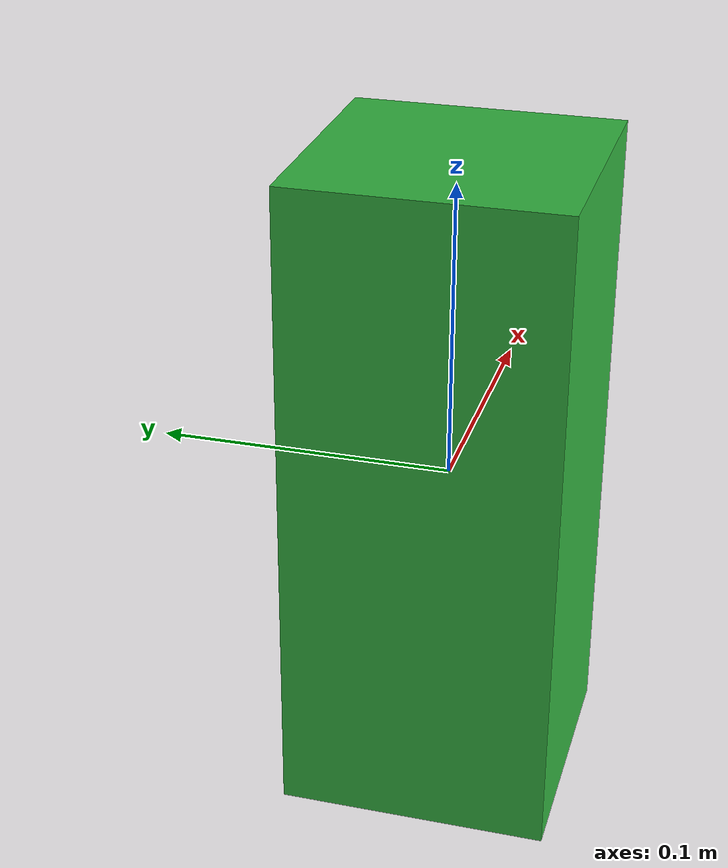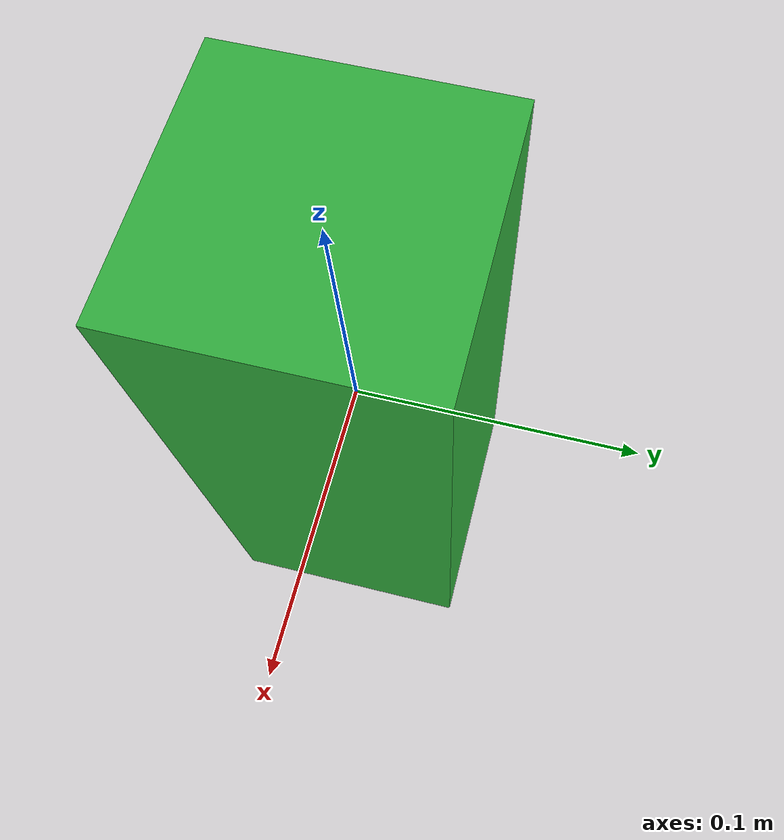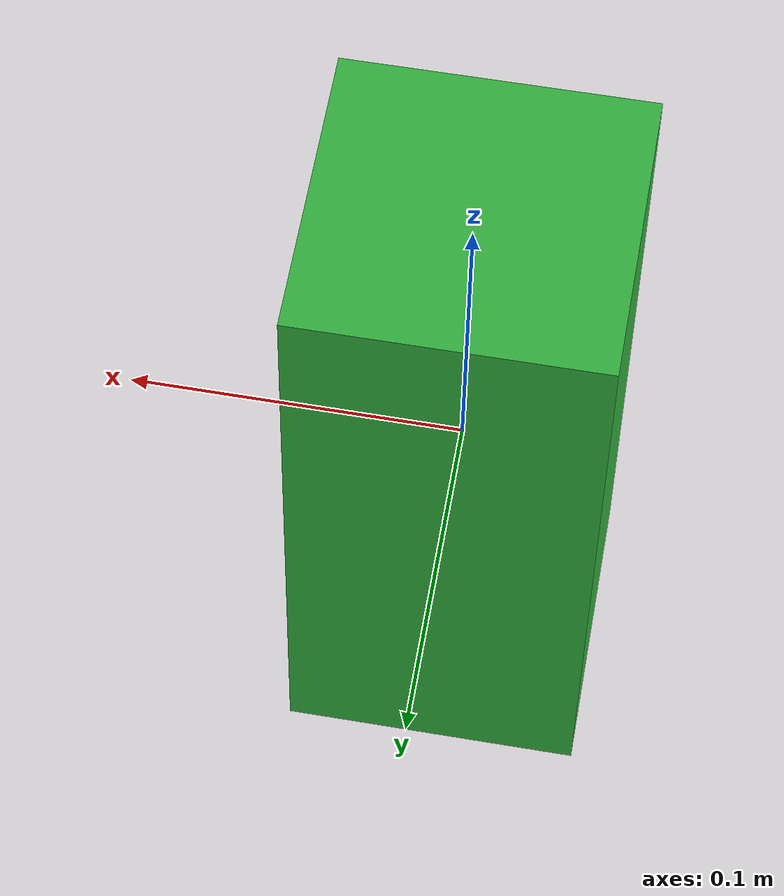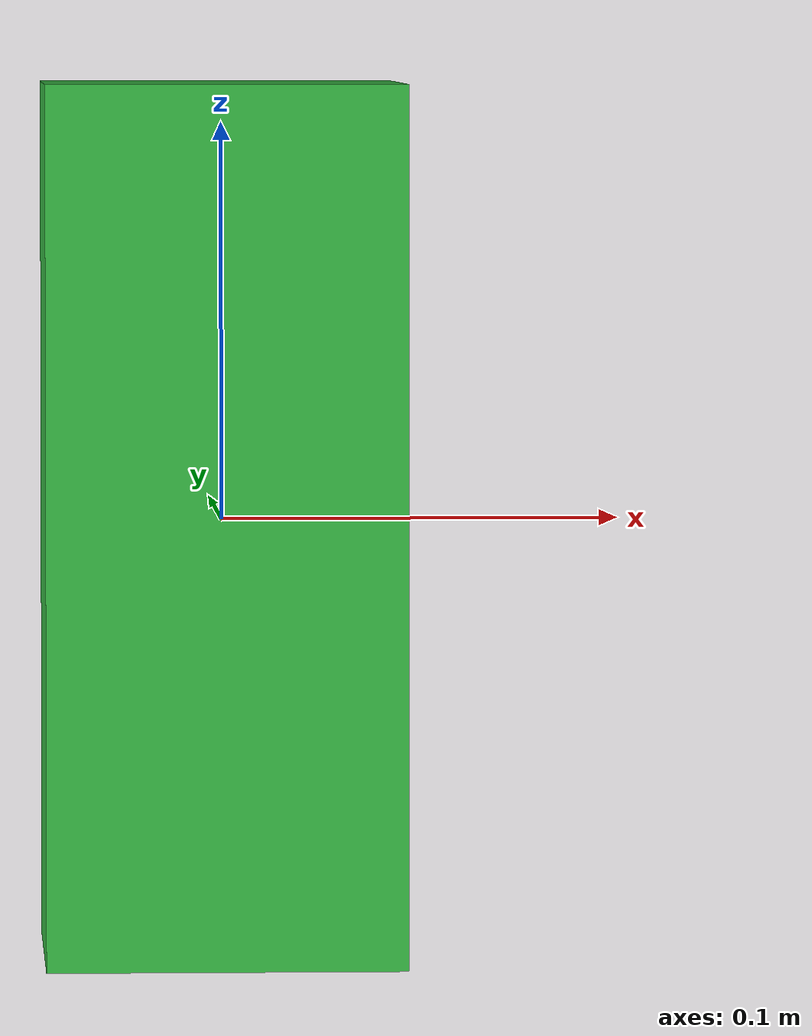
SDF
<?xml version="1.0"?>
<sdf version="1.9">
  <model name="box">
    <link name="link">
      <inertial><mass>0.5</mass>
        <inertia><ixx>2.354167e-03</ixx><iyy>2.354167e-03</iyy><izz>6.750000e-04</izz>
          <ixy>0</ixy><ixz>0</ixz><iyz>0</iyz></inertia>
      </inertial>
      <collision name="col">
        <geometry><box><size>0.09 0.09 0.22</size></box></geometry>
        <surface>
          <friction><ode><mu>1.5</mu><mu2>1.5</mu2></ode></friction>
          <contact><ode><soft_cfm>0.001</soft_cfm><soft_erp>0.2</soft_erp>
            <kp>1e6</kp><kd>100</kd></ode></contact>
        </surface>
      </collision>
      <visual name="vis">
        <geometry><box><size>0.09 0.09 0.22</size></box></geometry>
        <material><ambient>0.20 0.70 0.25 1</ambient><diffuse>0.20 0.70 0.25 1</diffuse>
          <specular>0.3 0.3 0.3 1</specular></material>
      </visual>
    </link>
    <plugin filename="gz-sim-pose-publisher-system"
            name="gz::sim::systems::PosePublisher">
      <publish_link_pose>false</publish_link_pose>
      <publish_visual_pose>false</publish_visual_pose>
      <publish_collision_pose>false</publish_collision_pose>
      <publish_sensor_pose>false</publish_sensor_pose>
      <publish_nested_model_pose>false</publish_nested_model_pose>
      <!-- the model pose, in the world frame - exactly what verification needs -->
      <publish_model_pose>true</publish_model_pose>
      <!-- one plain Pose, not a Pose_V, so the bridge conversion is the simplest one -->
      <use_pose_vector_msg>false</use_pose_vector_msg>
      <static_publisher>false</static_publisher>
      <update_frequency>20</update_frequency>
    </plugin>
  </model>
</sdf>
